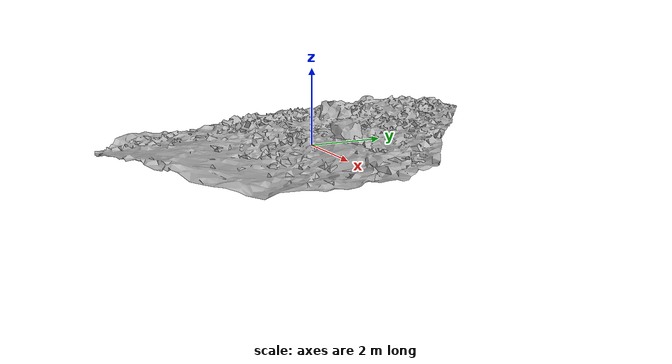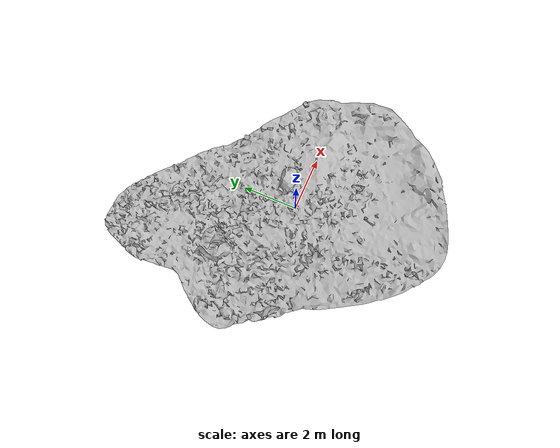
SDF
<?xml version="1.0" ?>
<sdf version="1.6">
    <model name="coast-land-rocks-04_2K_9d63d4e8-5064-4b62-8bfa-f7d45027fcf6">
        <static>true</static>
        <link name="link">
            <collision name="collision">
                <geometry>
                    <mesh>
                        <uri>model://rock/coast-land-rocks-04_2K_9d63d4e8-5064-4b62-8bfa-f7d45027fcf6/mesh/coast-land-rocks-04_2K_9d63d4e8-5064-4b62-8bfa-f7d45027fcf6_collision.dae</uri>
                    </mesh>
                </geometry>
            </collision>
            <visual name="visual">
                <geometry>
                    <mesh>
                        <uri>model://rock/coast-land-rocks-04_2K_9d63d4e8-5064-4b62-8bfa-f7d45027fcf6/mesh/coast-land-rocks-04_2K_9d63d4e8-5064-4b62-8bfa-f7d45027fcf6.dae</uri>
                    </mesh>
                </geometry>
                <material>
                    <script>
                        <uri>model://rock/coast-land-rocks-04_2K_9d63d4e8-5064-4b62-8bfa-f7d45027fcf6/materials/coast-land-rocks-04_2K_9d63d4e8-5064-4b62-8bfa-f7d45027fcf6.material</uri>
                        <name>coast-land-rocks-04_2K_9d63d4e8-5064-4b62-8bfa-f7d45027fcf6</name>
                    </script>
                </material>
            </visual>
        </link>
    </model>
</sdf>
